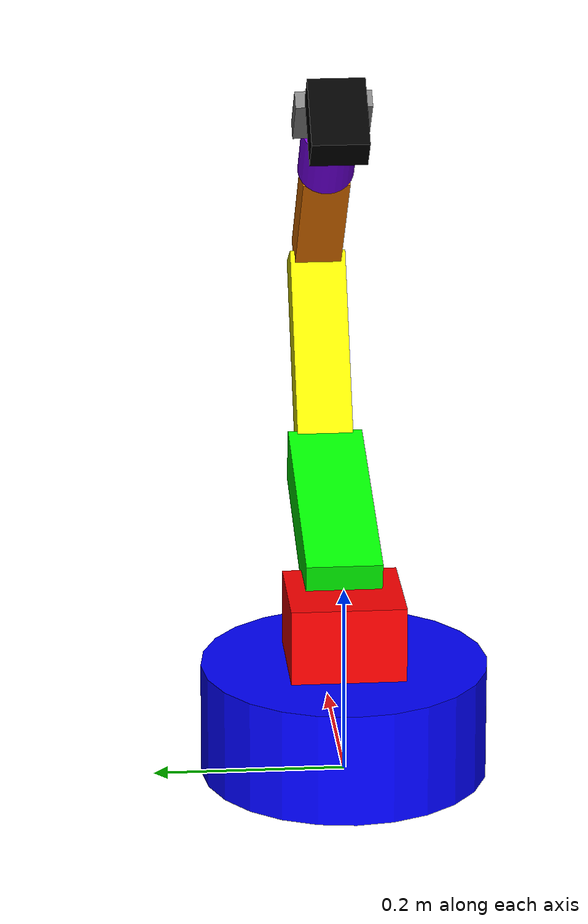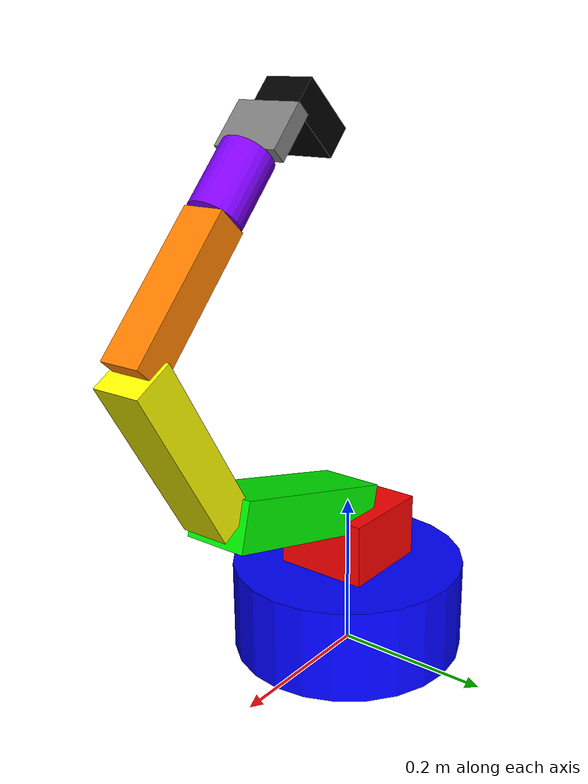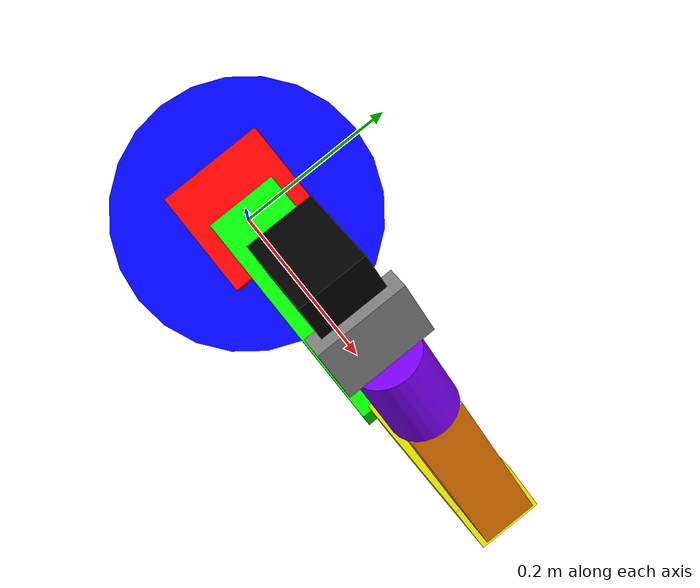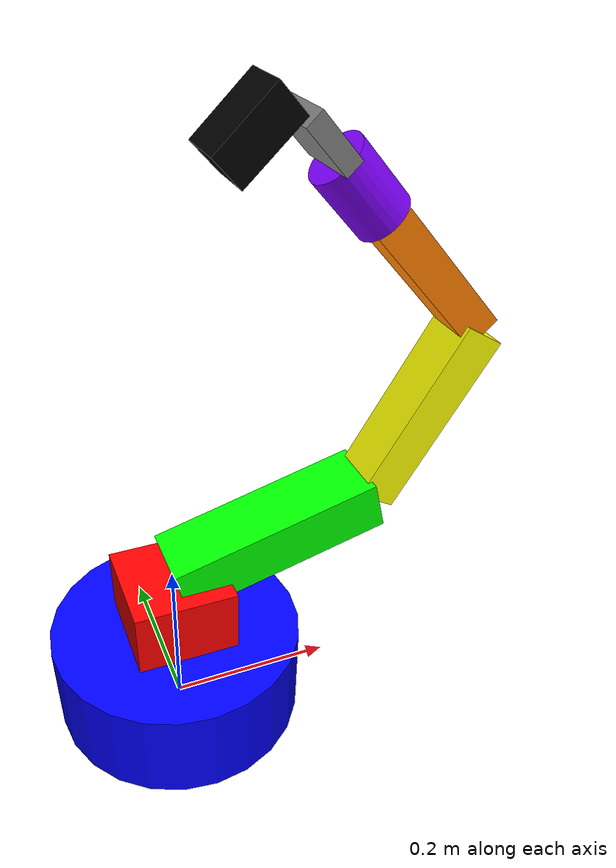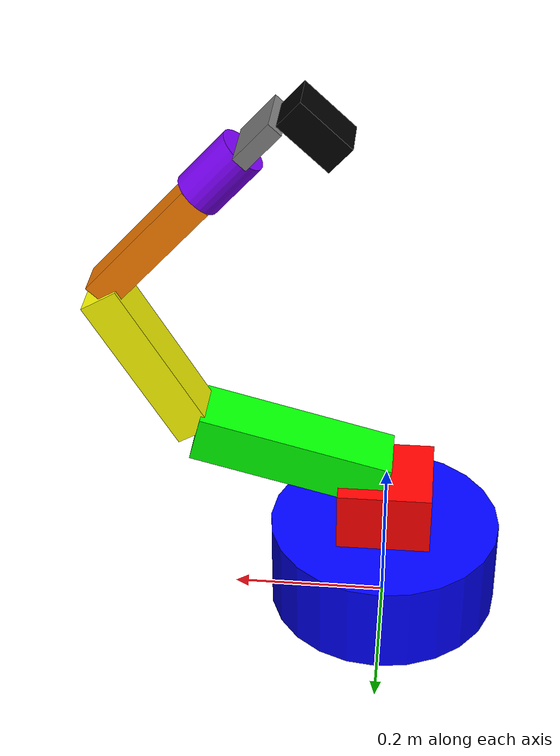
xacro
<?xml version="1.0"?>
<robot name="pegasus" xmlns:xacro="http://www.ros.org/wiki/xacro">

  <!-- World Link (required for world_to_base_joint) -->
  <link name="world"/>

  <!-- Base Link - Base mechanism with internal spur gear -->
  <link name="base_link">
    <visual>
      <geometry>
        <cylinder radius="0.15" length="0.12"/>
      </geometry>
      <origin xyz="0 0 0.06" rpy="0 0 0"/>
      <material name="blue">
        <color rgba="0.0 0.0 1.0 1.0"/>
      </material>
    </visual>
    <collision>
      <geometry>
        <cylinder radius="0.15" length="0.12"/>
      </geometry>
      <origin xyz="0 0 0.06" rpy="0 0 0"/>
    </collision>
    <inertial>
      <origin xyz="0 0 0.06" rpy="0 0 0"/>
      <mass value="2.0"/>
      <inertia ixx="0.0375" ixy="0" ixz="0" iyy="0.0375" iyz="0" izz="0.0225"/>
    </inertial>
  </link>

  <!-- Link 1 - Base upper part (Joint 5 in report - Base rotation) -->
  <link name="link1">
    <visual>
      <geometry><box size="0.12 0.12 0.08"/></geometry>
      <origin xyz="0 0 0.04" rpy="0 0 0"/>
      <material name="red">
        <color rgba="1.0 0.0 0.0 1.0"/>
      </material>
    </visual>
    <collision>
      <geometry><box size="0.12 0.12 0.08"/></geometry>
      <origin xyz="0 0 0.04" rpy="0 0 0"/>
    </collision>
    <inertial>
      <origin xyz="0 0 0.04" rpy="0 0 0"/>
      <mass value="0.8"/>
      <inertia ixx="0.0069" ixy="0" ixz="0" iyy="0.0069" iyz="0" izz="0.0096"/>
    </inertial>
  </link>

  <!-- Link 2 - Shoulder link (Joint 4 in report - Shoulder joint with 2 motors) -->
  <link name="link2">
    <visual>
      <geometry><box size="0.25 0.08 0.06"/></geometry>
      <origin xyz="0.125 0 0" rpy="0 0 0"/>
      <material name="green">
        <color rgba="0.0 1.0 0.0 1.0"/>
      </material>
    </visual>
    <collision>
      <geometry><box size="0.25 0.08 0.06"/></geometry>
      <origin xyz="0.125 0 0" rpy="0 0 0"/>
    </collision>
    <inertial>
      <origin xyz="0.125 0 0" rpy="0 0 0"/>
      <mass value="0.7"/>
      <inertia ixx="0.0024" ixy="0" ixz="0" iyy="0.0159" iyz="0" izz="0.0177"/>
    </inertial>
  </link>

  <!-- Link 3 - Upper arm link (Joint 3 in report - Elbow joint) -->
  <link name="link3">
    <visual>
      <geometry><box size="0.22 0.06 0.05"/></geometry>
      <origin xyz="0.11 0 0" rpy="0 0 0"/>
      <material name="yellow">
        <color rgba="1.0 1.0 0.0 1.0"/>
      </material>
    </visual>
    <collision>
      <geometry><box size="0.22 0.06 0.05"/></geometry>
      <origin xyz="0.11 0 0" rpy="0 0 0"/>
    </collision>
    <inertial>
      <origin xyz="0.11 0 0" rpy="0 0 0"/>
      <mass value="0.6"/>
      <inertia ixx="0.0013" ixy="0" ixz="0" iyy="0.0086" iyz="0" izz="0.0091"/>
    </inertial>
  </link>

  <!-- Link 4 - Forearm link (Joint 2 in report) -->
  <link name="link4">
    <visual>
      <geometry><box size="0.18 0.05 0.04"/></geometry>
      <origin xyz="0.09 0 0" rpy="0 0 0"/>
      <material name="orange">
        <color rgba="1.0 0.5 0.0 1.0"/>
      </material>
    </visual>
    <collision>
      <geometry><box size="0.18 0.05 0.04"/></geometry>
      <origin xyz="0.09 0 0" rpy="0 0 0"/>
    </collision>
    <inertial>
      <origin xyz="0.09 0 0" rpy="0 0 0"/>
      <mass value="0.4"/>
      <inertia ixx="0.0007" ixy="0" ixz="0" iyy="0.0055" iyz="0" izz="0.0058"/>
    </inertial>
  </link>

  <!-- Link 5 - Wrist link (Joint 1 in report - Wrist joint with 360° rotation) -->
  <link name="link5">
    <visual>
      <geometry><cylinder radius="0.03" length="0.08"/></geometry>
      <origin xyz="0.04 0 0" rpy="0 1.5708 0"/>
      <material name="purple">
        <color rgba="0.5 0.0 1.0 1.0"/>
      </material>
    </visual>
    <collision>
      <geometry><cylinder radius="0.03" length="0.08"/></geometry>
      <origin xyz="0.04 0 0" rpy="0 1.5708 0"/>
    </collision>
    <inertial>
      <origin xyz="0.04 0 0" rpy="0 0 0"/>
      <mass value="0.3"/>
      <inertia ixx="0.0019" ixy="0" ixz="0" iyy="0.0019" iyz="0" izz="0.00027"/>
    </inertial>
  </link>

  <!-- Link 6 - Gripper mounting plate -->
  <link name="link6">
    <visual>
      <geometry><box size="0.06 0.08 0.02"/></geometry>
      <origin xyz="0.03 0 0" rpy="0 0 0"/>
      <material name="gray">
        <color rgba="0.5 0.5 0.5 1.0"/>
      </material>
    </visual>
    <collision>
      <geometry><box size="0.06 0.08 0.02"/></geometry>
      <origin xyz="0.03 0 0" rpy="0 0 0"/>
    </collision>
    <inertial>
      <origin xyz="0.03 0 0" rpy="0 0 0"/>
      <mass value="0.2"/>
      <inertia ixx="0.0011" ixy="0" ixz="0" iyy="0.0008" iyz="0" izz="0.0017"/>
    </inertial>
  </link>

  <!-- End Effector Link - Gripper -->
  <link name="end_effector_link">
    <visual>
      <geometry><box size="0.04 0.06 0.08"/></geometry>
      <origin xyz="0.02 0 0.04" rpy="0 0 0"/>
      <material name="black">
        <color rgba="0.0 0.0 0.0 1.0"/>
      </material>
    </visual>
    <collision>
      <geometry><box size="0.04 0.06 0.08"/></geometry>
      <origin xyz="0.02 0 0.04" rpy="0 0 0"/>
    </collision>
    <inertial>
      <origin xyz="0.02 0 0.04" rpy="0 0 0"/>
      <mass value="0.15"/>
      <inertia ixx="0.00012" ixy="0" ixz="0" iyy="0.00009" iyz="0" izz="0.00007"/>
    </inertial>
  </link>

  <!-- Fixed joint from world to base -->
  <joint name="world_to_base_joint" type="fixed">
    <parent link="world"/>
    <child link="base_link"/>
    <origin xyz="0 0 0" rpy="0 0 0"/>
  </joint>

  <!-- Joint 1 - Base rotation (360° rotation) - Start at 0 (no change) -->
  <joint name="joint1" type="revolute">
    <parent link="base_link"/>
    <child link="link1"/>
    <origin xyz="0 0 0.12" rpy="0 0 0"/>
    <axis xyz="0 0 1"/>
    <limit lower="-6.28" upper="6.28" velocity="2.0" effort="150.0"/>
    <safety_controller k_velocity="10.0" k_position="15.0" soft_lower_limit="-6.20" soft_upper_limit="6.20"/>
    <dynamics damping="0.7" friction="0.1"/>
  </joint>

  <!-- Joint 2 - Shoulder joint (35° range) - Start at -15° to lift arm up -->
  <joint name="joint2" type="revolute">
    <parent link="link1"/>
    <child link="link2"/>
    <origin xyz="0 0 0.08" rpy="0 -0.26 0"/>  <!-- -15° initial position -->
    <axis xyz="0 1 0"/>
    <limit lower="-0.61" upper="0.61" velocity="2.0" effort="80.0"/>
    <safety_controller k_velocity="10.0" k_position="15.0" soft_lower_limit="-0.57" soft_upper_limit="0.57"/>
    <dynamics damping="0.7" friction="0.1"/>
  </joint>

  <!-- Joint 3 - Elbow joint (100° range) - Start at -45° to bend elbow -->
  <joint name="joint3" type="revolute">
    <parent link="link2"/>
    <child link="link3"/>
    <origin xyz="0.25 0 0" rpy="0 -0.785 0"/>  <!-- -45° initial position -->
    <axis xyz="0 1 0"/>
    <limit lower="-1.75" upper="1.75" velocity="2.0" effort="40.0"/>
    <safety_controller k_velocity="10.0" k_position="15.0" soft_lower_limit="-1.70" soft_upper_limit="1.70"/>
    <dynamics damping="0.7" friction="0.1"/>
  </joint>

  <!-- Joint 4 - Forearm joint (75° range) - Start at -75° to continue bend -->
  <joint name="joint4" type="revolute">
    <parent link="link3"/>
    <child link="link4"/>
    <origin xyz="0.22 0 0" rpy="0 -1.27 0"/>  <!-- ~72.8° initial position -->
    <axis xyz="0 1 0"/>
    <limit lower="-1.31" upper="1.31" velocity="2.0" effort="40.0"/>
    <safety_controller k_velocity="10.0" k_position="15.0" soft_lower_limit="-1.27" soft_upper_limit="1.27"/>
    <dynamics damping="0.7" friction="0.1"/>
  </joint>

  <!-- Joint 5 - Wrist rotation (360° rotation) - Start at 0 (no change) -->
  <joint name="joint5" type="revolute">
    <parent link="link4"/>
    <child link="link5"/>
    <origin xyz="0.18 0 0" rpy="0 0 0"/>
    <axis xyz="1 0 0"/>
    <limit lower="-6.28" upper="6.28" velocity="2.0" effort="40.0"/>
    <safety_controller k_velocity="10.0" k_position="15.0" soft_lower_limit="-6.20" soft_upper_limit="6.20"/>
    <dynamics damping="0.7" friction="0.1"/>
  </joint>

  <!-- Joint 6 - Gripper mounting (fixed) -->
  <joint name="joint6" type="fixed">
    <parent link="link5"/>
    <child link="link6"/>
    <origin xyz="0.08 0 0" rpy="0 0 0"/>
  </joint>

  <!-- Joint from gripper mount to end effector -->
  <joint name="joint6_to_end_effector" type="fixed">
    <parent link="link6"/>
    <child link="end_effector_link"/>
    <origin xyz="0.06 0 0" rpy="0 0 0"/>
  </joint>

  <!-- Transmission elements for ros2_control -->
  <transmission name="joint1_transmission">
    <type>transmission_interface/SimpleTransmission</type>
    <joint name="joint1">
      <hardwareInterface>hardware_interface/PositionJointInterface</hardwareInterface>
    </joint>
    <actuator name="joint1_motor">
      <hardwareInterface>hardware_interface/PositionJointInterface</hardwareInterface>
      <mechanicalReduction>1</mechanicalReduction>
    </actuator>
  </transmission>

  <transmission name="joint2_transmission">
    <type>transmission_interface/SimpleTransmission</type>
    <joint name="joint2">
      <hardwareInterface>hardware_interface/PositionJointInterface</hardwareInterface>
    </joint>
    <actuator name="joint2_motor">
      <hardwareInterface>hardware_interface/PositionJointInterface</hardwareInterface>
      <mechanicalReduction>1</mechanicalReduction>
    </actuator>
  </transmission>

  <transmission name="joint3_transmission">
    <type>transmission_interface/SimpleTransmission</type>
    <joint name="joint3">
      <hardwareInterface>hardware_interface/PositionJointInterface</hardwareInterface>
    </joint>
    <actuator name="joint3_motor">
      <hardwareInterface>hardware_interface/PositionJointInterface</hardwareInterface>
      <mechanicalReduction>1</mechanicalReduction>
    </actuator>
  </transmission>

  <transmission name="joint4_transmission">
    <type>transmission_interface/SimpleTransmission</type>
    <joint name="joint4">
      <hardwareInterface>hardware_interface/PositionJointInterface</hardwareInterface>
    </joint>
    <actuator name="joint4_motor">
      <hardwareInterface>hardware_interface/PositionJointInterface</hardwareInterface>
      <mechanicalReduction>1</mechanicalReduction>
    </actuator>
  </transmission>

  <transmission name="joint5_transmission">
    <type>transmission_interface/SimpleTransmission</type>
    <joint name="joint5">
      <hardwareInterface>hardware_interface/PositionJointInterface</hardwareInterface>
    </joint>
    <actuator name="joint5_motor">
      <hardwareInterface>hardware_interface/PositionJointInterface</hardwareInterface>
      <mechanicalReduction>1</mechanicalReduction>
    </actuator>
  </transmission>

  <!-- ros2_control Configuration -->
  <ros2_control name="PegasusArm" type="system">
    <hardware>
      <plugin>mock_components/GenericSystem</plugin>
      <param name="mock_sensor_commands">false</param>
      <param name="state_following_offset">0.0</param>
    </hardware>
    <joint name="joint1">
      <command_interface name="position">
        <param name="min">-6.28</param>
        <param name="max">6.28</param>
      </command_interface>
      <state_interface name="position">
        <param name="initial_value">0.0</param>
      </state_interface>
      <state_interface name="velocity">
        <param name="initial_value">0.0</param>
      </state_interface>
    </joint>
    <joint name="joint2">
      <command_interface name="position">
        <param name="min">-0.61</param>
        <param name="max">0.61</param>
      </command_interface>
      <state_interface name="position">
        <param name="initial_value">-0.26</param>
      </state_interface>
      <state_interface name="velocity">
        <param name="initial_value">0.0</param>
      </state_interface>
    </joint>
    <joint name="joint3">
      <command_interface name="position">
        <param name="min">-1.75</param>
        <param name="max">1.75</param>
      </command_interface>
      <state_interface name="position">
        <param name="initial_value">-0.785</param>
      </state_interface>
      <state_interface name="velocity">
        <param name="initial_value">0.0</param>
      </state_interface>
    </joint>
    <joint name="joint4">
      <command_interface name="position">
        <param name="min">-1.31</param>
        <param name="max">1.31</param>
      </command_interface>
      <state_interface name="position">
        <param name="initial_value">-1.27</param>
      </state_interface>
      <state_interface name="velocity">
        <param name="initial_value">0.0</param>
      </state_interface>
    </joint>
    <joint name="joint5">
      <command_interface name="position">
        <param name="min">-6.28</param>
        <param name="max">6.28</param>
      </command_interface>
      <state_interface name="position">
        <param name="initial_value">0.0</param>
      </state_interface>
      <state_interface name="velocity">
        <param name="initial_value">0.0</param>
      </state_interface>
    </joint>
  </ros2_control>
  <ros2_control name="robot_description"      type="robot_state_publisher">
    <param name="robot_description" value="$(find update_pegasus_description)/config/ros2_controllers.yaml"/>
</ros2_control>

  <!-- Gazebo-specific tags -->
  <gazebo>
    <plugin name="gazebo_ros2_control" filename="libgazebo_ros2_control.so">
      <robot_param>robot_description</robot_param>
      <robot_param_node>robot_state_publisher</robot_param_node>
      <parameters>$(find update_pegasus_description)/config/ros2_controllers.yaml</parameters>
    </plugin>
  </gazebo>

  <!-- Gazebo material properties for better visualization -->
  <gazebo reference="base_link">
    <material>Gazebo/Blue</material>
    <mu1>0.2</mu1>
    <mu2>0.2</mu2>
    <self_collide>0</self_collide>
  </gazebo>

  <gazebo reference="link1">
    <material>Gazebo/Red</material>
    <mu1>0.2</mu1>
    <mu2>0.2</mu2>
    <self_collide>0</self_collide>
  </gazebo>

  <gazebo reference="link2">
    <material>Gazebo/Green</material>
    <mu1>0.2</mu1>
    <mu2>0.2</mu2>
    <self_collide>0</self_collide>
  </gazebo>

  <gazebo reference="link3">
    <material>Gazebo/Yellow</material>
    <mu1>0.2</mu1>
    <mu2>0.2</mu2>
    <self_collide>0</self_collide>
  </gazebo>

  <gazebo reference="link4">
    <material>Gazebo/Orange</material>
    <mu1>0.2</mu1>
    <mu2>0.2</mu2>
    <self_collide>0</self_collide>
  </gazebo>

  <gazebo reference="link5">
    <material>Gazebo/Purple</material>
    <mu1>0.2</mu1>
    <mu2>0.2</mu2>
    <self_collide>0</self_collide>
  </gazebo>

  <gazebo reference="link6">
    <material>Gazebo/Grey</material>
    <mu1>0.2</mu1>
    <mu2>0.2</mu2>
    <self_collide>0</self_collide>
  </gazebo>

  <gazebo reference="end_effector_link">
    <material>Gazebo/Black</material>
    <mu1>0.2</mu1>
    <mu2>0.2</mu2>
    <self_collide>0</self_collide>
  </gazebo>

</robot>
